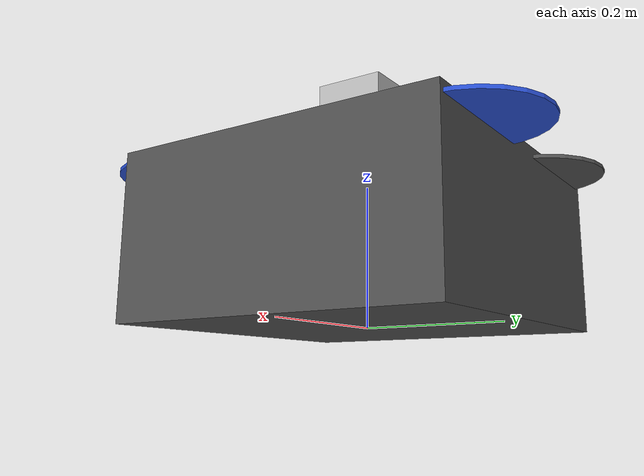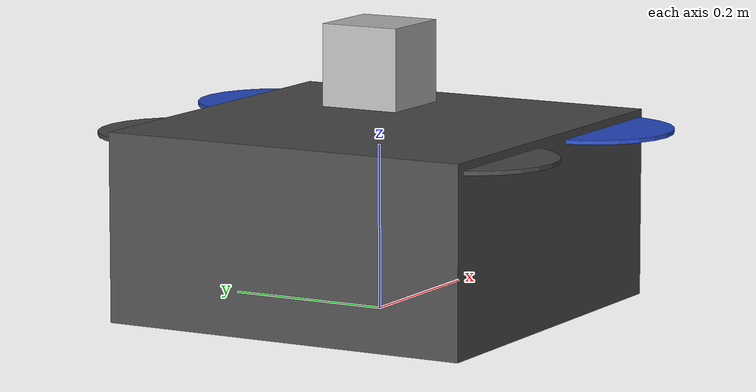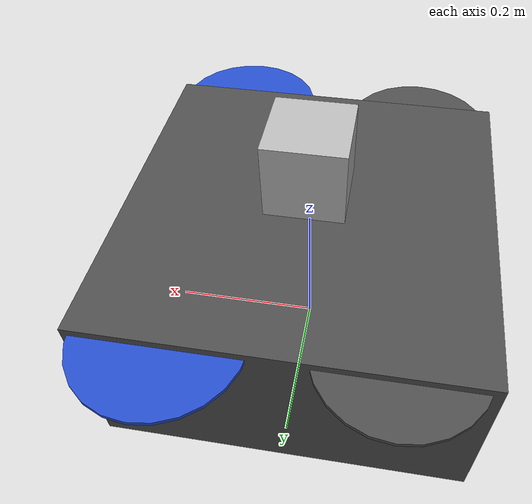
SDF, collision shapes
<?xml version="1.0"?>
<sdf version="1.6">
  <model name="drone1">
    <include>
      <uri>model://iris_with_standoffs</uri>
    </include>
        <!-- plugins -->
    <plugin name="rotor_0_blade_1" filename="libLiftDragPlugin.so">
      <a0>0.3</a0>
      <alpha_stall>1.4</alpha_stall>
      <cla>4.2500</cla>
      <cda>0.10</cda>
      <cma>0.00</cma>
      <cla_stall>-0.025</cla_stall>
      <cda_stall>0.0</cda_stall>
      <cma_stall>0.0</cma_stall>
      <area>0.002</area>
      <air_density>1.2041</air_density>
      <cp>0.084 0 0</cp>
      <forward>0 1 0</forward>
      <upward>0 0 1</upward>
      <link_name>iris::rotor_0</link_name>
    </plugin>
    <plugin name="rotor_0_blade_2" filename="libLiftDragPlugin.so">
      <a0>0.3</a0>
      <alpha_stall>1.4</alpha_stall>
      <cla>4.2500</cla>
      <cda>0.10</cda>
      <cma>0.00</cma>
      <cla_stall>-0.025</cla_stall>
      <cda_stall>0.0</cda_stall>
      <cma_stall>0.0</cma_stall>
      <area>0.002</area>
      <air_density>1.2041</air_density>
      <cp>-0.084 0 0</cp>
      <forward>0 -1 0</forward>
      <upward>0 0 1</upward>
      <link_name>iris::rotor_0</link_name>
    </plugin>

    <plugin name="rotor_1_blade_1" filename="libLiftDragPlugin.so">
      <a0>0.3</a0>
      <alpha_stall>1.4</alpha_stall>
      <cla>4.2500</cla>
      <cda>0.10</cda>
      <cma>0.00</cma>
      <cla_stall>-0.025</cla_stall>
      <cda_stall>0.0</cda_stall>
      <cma_stall>0.0</cma_stall>
      <area>0.002</area>
      <air_density>1.2041</air_density>
      <cp>0.084 0 0</cp>
      <forward>0 1 0</forward>
      <upward>0 0 1</upward>
      <link_name>iris::rotor_1</link_name>
    </plugin>
    <plugin name="rotor_1_blade_2" filename="libLiftDragPlugin.so">
      <a0>0.3</a0>
      <alpha_stall>1.4</alpha_stall>
      <cla>4.2500</cla>
      <cda>0.10</cda>
      <cma>0.00</cma>
      <cla_stall>-0.025</cla_stall>
      <cda_stall>0.0</cda_stall>
      <cma_stall>0.0</cma_stall>
      <area>0.002</area>
      <air_density>1.2041</air_density>
      <cp>-0.084 0 0</cp>
      <forward>0 -1 0</forward>
      <upward>0 0 1</upward>
      <link_name>iris::rotor_1</link_name>
    </plugin>

    <plugin name="rotor_2_blade_1" filename="libLiftDragPlugin.so">
      <a0>0.3</a0>
      <alpha_stall>1.4</alpha_stall>
      <cla>4.2500</cla>
      <cda>0.10</cda>
      <cma>0.00</cma>
      <cla_stall>-0.025</cla_stall>
      <cda_stall>0.0</cda_stall>
      <cma_stall>0.0</cma_stall>
      <area>0.002</area>
      <air_density>1.2041</air_density>
      <cp>0.084 0 0</cp>
      <forward>0 -1 0</forward>
      <upward>0 0 1</upward>
      <link_name>iris::rotor_2</link_name>
    </plugin>
    <plugin name="rotor_2_blade_2" filename="libLiftDragPlugin.so">
      <a0>0.3</a0>
      <alpha_stall>1.4</alpha_stall>
      <cla>4.2500</cla>
      <cda>0.10</cda>
      <cma>0.00</cma>
      <cla_stall>-0.025</cla_stall>
      <cda_stall>0.0</cda_stall>
      <cma_stall>0.0</cma_stall>
      <area>0.002</area>
      <air_density>1.2041</air_density>
      <cp>-0.084 0 0</cp>
      <forward>0 1 0</forward>
      <upward>0 0 1</upward>
      <link_name>iris::rotor_2</link_name>
    </plugin>

    <plugin name="rotor_3_blade_1" filename="libLiftDragPlugin.so">
      <a0>0.3</a0>
      <alpha_stall>1.4</alpha_stall>
      <cla>4.2500</cla>
      <cda>0.10</cda>
      <cma>0.00</cma>
      <cla_stall>-0.025</cla_stall>
      <cda_stall>0.0</cda_stall>
      <cma_stall>0.0</cma_stall>
      <area>0.002</area>
      <air_density>1.2041</air_density>
      <cp>0.084 0 0</cp>
      <forward>0 -1 0</forward>
      <upward>0 0 1</upward>
      <link_name>iris::rotor_3</link_name>
    </plugin>
    <plugin name="rotor_3_blade_2" filename="libLiftDragPlugin.so">
      <a0>0.3</a0>
      <alpha_stall>1.4</alpha_stall>
      <cla>4.2500</cla>
      <cda>0.10</cda>
      <cma>0.00</cma>
      <cla_stall>-0.025</cla_stall>
      <cda_stall>0.0</cda_stall>
      <cma_stall>0.0</cma_stall>
      <area>0.002</area>
      <air_density>1.2041</air_density>
      <cp>-0.084 0 0</cp>
      <forward>0 1 0</forward>
      <upward>0 0 1</upward>
      <link_name>iris::rotor_3</link_name>
    </plugin>
        <plugin name="arducopter_plugin" filename="libArduPilotPlugin.so">
      <fdm_addr>127.0.0.1</fdm_addr>
      <fdm_port_in>9002</fdm_port_in>
      <fdm_port_out>9003</fdm_port_out>
      <!--
          Require by APM :
          Only change model and gazebo from XYZ to XY-Z coordinates
      -->
      <modelXYZToAirplaneXForwardZDown>0 0 0 3.141593 0 0</modelXYZToAirplaneXForwardZDown>
      <gazeboXYZToNED>0 0 0 3.141593 0 0</gazeboXYZToNED>
      <imuName>iris::iris/imu_link::imu_sensor</imuName>
      <connectionTimeoutMaxCount>5</connectionTimeoutMaxCount>
      <control channel="0">
      <!--
          incoming control command [0, 1]
          so offset it by 0 to get [0, 1]
          and divide max target by 1.
          offset = 0
          multiplier = 838 max rpm / 1 = 838
        -->reutrn
        <type>VELOCITY</type>
        <offset>0</offset>
        <p_gain>0.20</p_gain>
        <i_gain>0</i_gain>
        <d_gain>0</d_gain>
        <i_max>0</i_max>
        <i_min>0</i_min>
        <cmd_max>2.5</cmd_max>
        <cmd_min>-2.5</cmd_min>
        <jointName>iris::rotor_0_joint</jointName>
        <multiplier>838</multiplier>
        <controlVelocitySlowdownSim>1</controlVelocitySlowdownSim>
      </control>
      <control channel="1">
        <type>VELOCITY</type>
        <offset>0</offset>
        <p_gain>0.20</p_gain>
        <i_gain>0</i_gain>
        <d_gain>0</d_gain>
        <i_max>0</i_max>
        <i_min>0</i_min>
        <cmd_max>2.5</cmd_max>
        <cmd_min>-2.5</cmd_min>
        <jointName>iris::rotor_1_joint</jointName>
        <multiplier>838</multiplier>
        <controlVelocitySlowdownSim>1</controlVelocitySlowdownSim>
      </control>
      <control channel="2">
        <type>VELOCITY</type>
        <offset>0</offset>
        <p_gain>0.20</p_gain>
        <i_gain>0</i_gain>
        <d_gain>0</d_gain>
        <i_max>0</i_max>
        <i_min>0</i_min>
        <cmd_max>2.5</cmd_max>
        <cmd_min>-2.5</cmd_min>
        <jointName>iris::rotor_2_joint</jointName>
        <multiplier>-838</multiplier>
        <controlVelocitySlowdownSim>1</controlVelocitySlowdownSim>
      </control>
      <control channel="3">
        <type>VELOCITY</type>
        <offset>0</offset>
        <p_gain>0.20</p_gain>
        <i_gain>0</i_gain>
        <d_gain>0</d_gain>
        <i_max>0</i_max>
        <i_min>0</i_min>
        <cmd_max>2.5</cmd_max>
        <cmd_min>-2.5</cmd_min>
        <jointName>iris::rotor_3_joint</jointName>
        <multiplier>-838</multiplier>
        <controlVelocitySlowdownSim>1</controlVelocitySlowdownSim>
      </control>
    </plugin>

<!--add lidar-->
    <link name="hokuyo_link">
      <pose>0 0 0 0 0 0</pose>
      <collision name="collision">
        <pose>0 0 0.3 0 0 0</pose>
        <geometry>
          <box>
            <size>0.1 0.1 0.1</size>
          </box>
        </geometry>
      </collision>
      <visual name="visual">
        <pose>0 0 0.27 0 0 0</pose>
        <geometry>
          <mesh>
            <uri>model://hokuyo/meshes/hokuyo.dae</uri>
          </mesh>
        </geometry>
      </visual>
      <inertial>
        <mass>0.016</mass>
        <inertia>
            <ixx>0.0001</ixx>
            <ixy>0</ixy>
            <ixz>0</ixz>
            <iyy>0.0001</iyy>
            <iyz>0</iyz>
            <izz>0.0001</izz>
            <!-- low intertia necessary to avoid not disturb the drone -->
        </inertia>
      </inertial>

      <sensor type="ray" name="laser">
        <pose>0 0 0.3 0 0 1.57</pose>
        <visualize>true</visualize>
        <update_rate>10</update_rate>
        <ray>
          <scan>
            <horizontal>
              <samples>1024</samples>
              <resolution>1</resolution>
              <min_angle>-3.141593</min_angle>
              <max_angle>3.141593</max_angle>
            </horizontal>
          </scan>
          <range>
            <min>0.1</min>
            <max>30</max>
            <resolution>0.1</resolution>
          </range>
        </ray>
        <plugin name="robo_scan" filename="libgazebo_ros_ray_sensor.so">
          <output_type>sensor_msgs/LaserScan</output_type>
          <frame_name>base_scan</frame_name>
       </plugin>
      </sensor>
    </link>

    <joint name="hokuyo_joint" type="fixed">
      <pose>0 0 0 0 0 0</pose>
      <parent>iris::base_link</parent>
      <child>hokuyo_link</child>
    </joint>  </model>
</sdf>

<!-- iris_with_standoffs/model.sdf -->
<sdf version='1.6'>
  <model name='iris'>
    <pose>0 0 0.194923 0 0 0</pose>
    <link name='base_link'>
      <velocity_decay>
        <linear>0.0</linear>
        <angular>0.0</angular>
      </velocity_decay>
      <inertial>
        <pose>0 0 0 0 0 0</pose>
        <mass>1.5</mass>
        <inertia>
          <ixx>0.008</ixx>
          <ixy>0</ixy>
          <ixz>0</ixz>
          <iyy>0.015</iyy>
          <iyz>0</iyz>
          <izz>0.017</izz>
        </inertia>
      </inertial>
      <collision name='base_link_collision'>
        <pose>0 0 -0.08 0 0 0</pose>
        <geometry>
          <box>
            <size>0.47 0.47 0.23</size>
          </box>
        </geometry>
        <surface>
          <contact>
            <ode>
              <max_vel>100.0</max_vel>
              <min_depth>0.001</min_depth>
            </ode>
          </contact>
          <friction>
            <ode>
              <mu>1.0</mu>
              <mu2>1.0</mu2>
            </ode>
          </friction>
        </surface>
      </collision>
      <visual name='base_link_visual'>
        <geometry>
          <mesh>
            <uri>model://../model_source/models/iris_with_standoffs/meshes/iris.dae</uri>
          </mesh>
        </geometry>
        <material>
          <script>
            <name>Gazebo/DarkGrey</name>
          </script>
        </material>
      </visual>

      <visual name='front_left_leg_visual'>
        <pose>0.123 0.22 -0.11 0 0 0</pose>
        <geometry>
          <cylinder>
            <radius>0.005</radius>
            <length>0.17</length>
          </cylinder>
        </geometry>
        <material>
          <script>
            <name>Gazebo/FlatBlack</name>
            <uri>file://media/materials/scripts/gazebo.material</uri>
          </script>
        </material>
      </visual>
      <visual name='front_right_leg_visual'>
        <pose>0.123 -0.22 -0.11 0 0 0</pose>
        <geometry>
          <cylinder>
            <radius>0.005</radius>
            <length>0.17</length>
          </cylinder>
        </geometry>
        <material>
          <script>
            <name>Gazebo/FlatBlack</name>
            <uri>file://media/materials/scripts/gazebo.material</uri>
          </script>
        </material>
      </visual>
      <visual name='rear_left_leg_visual'>
        <pose>-0.140 0.21 -0.11 0 0 0</pose>
        <geometry>
          <cylinder>
            <radius>0.005</radius>
            <length>0.17</length>
          </cylinder>
        </geometry>
        <material>
          <script>
            <name>Gazebo/FlatBlack</name>
            <uri>file://media/materials/scripts/gazebo.material</uri>
          </script>
        </material>
      </visual>
      <visual name='rear_right_leg_visual'>
        <pose>-0.140 -0.21 -0.11 0 0 0</pose>
        <geometry>
          <cylinder>
            <radius>0.005</radius>
            <length>0.17</length>
          </cylinder>
        </geometry>
        <material>
          <script>
            <name>Gazebo/FlatBlack</name>
            <uri>file://media/materials/scripts/gazebo.material</uri>
          </script>
        </material>
      </visual>
    </link>
    <link name='iris/ground_truth/odometry_sensorgt_link'>
      <pose>0 0 0 0 -0 0</pose>
      <inertial>
        <pose>0 0 0 0 -0 0</pose>
        <mass>0.15</mass>
        <inertia>
          <ixx>0.0001</ixx>
          <ixy>0</ixy>
          <ixz>0</ixz>
          <iyy>0.0002</iyy>
          <iyz>0</iyz>
          <izz>0.0002</izz>
        </inertia>
      </inertial>
    </link>
    <joint name='iris/ground_truth/odometry_sensorgt_joint' type='revolute'>
      <child>iris/ground_truth/odometry_sensorgt_link</child>
      <parent>base_link</parent>
      <axis>
        <xyz>0 0 1</xyz>
        <limit>
          <lower>0</lower>
          <upper>0</upper>
          <effort>0</effort>
          <velocity>0</velocity>
        </limit>
        <dynamics>
          <damping>1.0</damping>
        </dynamics>
        <use_parent_model_frame>1</use_parent_model_frame>
      </axis>
      <physics>
        <ode>
          <implicit_spring_damper>1</implicit_spring_damper>
        </ode>
      </physics>
    </joint>
    <link name='iris/imu_link'>
      <inertial>
        <pose>0 0 0 0 0 0</pose>
        <mass>0.15</mass>
        <inertia>
          <ixx>0.00001</ixx>
          <ixy>0</ixy>
          <ixz>0</ixz>
          <iyy>0.00002</iyy>
          <iyz>0</iyz>
          <izz>0.00002</izz>
        </inertia>
      </inertial>
      <sensor name="imu_sensor" type="imu">
        <pose>0 0 0 3.141593 0 0</pose>
        <always_on>1</always_on>
        <update_rate>1000.0</update_rate>
      </sensor>
    </link>
    <joint name='iris/imu_joint' type='revolute'>
      <child>iris/imu_link</child>
      <parent>base_link</parent>
      <axis>
        <xyz>0 0 1</xyz>
        <limit>
          <lower>0</lower>
          <upper>0</upper>
          <effort>0</effort>
          <velocity>0</velocity>
        </limit>
        <dynamics>
          <damping>1.0</damping>
        </dynamics>
        <use_parent_model_frame>1</use_parent_model_frame>
      </axis>
      <physics>
        <ode>
          <implicit_spring_damper>1</implicit_spring_damper>
        </ode>
      </physics>
    </joint>
    <link name='rotor_0'>
      <pose>0.13 -0.22 0.023 0 -0 0</pose>
      <inertial>
        <pose>0 0 0 0 -0 0</pose>
        <mass>0.025</mass>
        <inertia>
          <ixx>9.75e-06</ixx>
          <ixy>0</ixy>
          <ixz>0</ixz>
          <iyy>0.000166704</iyy>
          <iyz>0</iyz>
          <izz>0.000167604</izz>
        </inertia>
      </inertial>
      <collision name='rotor_0_collision'>
        <pose>0 0 0 0 -0 0</pose>
        <geometry>
          <cylinder>
            <length>0.005</length>
            <radius>0.1</radius>
          </cylinder>
        </geometry>
        <surface>
          <contact>
            <ode/>
          </contact>
          <friction>
            <ode/>
          </friction>
        </surface>
      </collision>
      <visual name='rotor_0_visual'>
        <pose>0 0 0 0 -0 0</pose>
        <geometry>
          <mesh>
            <scale>1 1 1</scale>
            <uri>model://../model_source/models/iris_with_standoffs/meshes/iris_prop_ccw.dae</uri>
          </mesh>
        </geometry>
        <material>
          <script>
            <name>Gazebo/Blue</name>
            <uri>__default__</uri>
          </script>
        </material>
      </visual>
      <gravity>1</gravity>
      <velocity_decay/>
      <self_collide>0</self_collide>
    </link>
    <joint name='rotor_0_joint' type='revolute'>
      <child>rotor_0</child>
      <parent>base_link</parent>
      <axis>
        <xyz>0 0 1</xyz>
        <limit>
          <lower>-1e+16</lower>
          <upper>1e+16</upper>
        </limit>
        <dynamics>
          <damping>0.004</damping>
        </dynamics>
        <use_parent_model_frame>1</use_parent_model_frame>
      </axis>
      <physics>
        <ode>
          <implicit_spring_damper>1</implicit_spring_damper>
        </ode>
      </physics>
    </joint>
    <link name='rotor_1'>
      <pose>-0.13 0.2 0.023 0 -0 0</pose>
      <inertial>
        <pose>0 0 0 0 -0 0</pose>
        <mass>0.025</mass>
        <inertia>
          <ixx>9.75e-06</ixx>
          <ixy>0</ixy>
          <ixz>0</ixz>
          <iyy>0.000166704</iyy>
          <iyz>0</iyz>
          <izz>0.000167604</izz>
        </inertia>
      </inertial>
      <collision name='rotor_1_collision'>
        <pose>0 0 0 0 -0 0</pose>
        <geometry>
          <cylinder>
            <length>0.005</length>
            <radius>0.1</radius>
          </cylinder>
        </geometry>
        <surface>
          <contact>
            <ode/>
          </contact>
          <friction>
            <ode/>
          </friction>
        </surface>
      </collision>
      <visual name='rotor_1_visual'>
        <pose>0 0 0 0 -0 0</pose>
        <geometry>
          <mesh>
            <scale>1 1 1</scale>
            <uri>model://../model_source/models/iris_with_standoffs/meshes/iris_prop_ccw.dae</uri>
          </mesh>
        </geometry>
        <material>
          <script>
            <name>Gazebo/DarkGrey</name>
            <uri>__default__</uri>
          </script>
        </material>
      </visual>
      <gravity>1</gravity>
      <velocity_decay/>
      <self_collide>0</self_collide>
    </link>
    <joint name='rotor_1_joint' type='revolute'>
      <child>rotor_1</child>
      <parent>base_link</parent>
      <axis>
        <xyz>0 0 1</xyz>
        <limit>
          <lower>-1e+16</lower>
          <upper>1e+16</upper>
        </limit>
        <dynamics>
          <damping>0.004</damping>
        </dynamics>
        <use_parent_model_frame>1</use_parent_model_frame>
      </axis>
      <physics>
        <ode>
          <implicit_spring_damper>1</implicit_spring_damper>
        </ode>
      </physics>
    </joint>
    <link name='rotor_2'>
      <pose>0.13 0.22 0.023 0 -0 0</pose>
      <inertial>
        <pose>0 0 0 0 -0 0</pose>
        <mass>0.025</mass>
        <inertia>
          <ixx>9.75e-06</ixx>
          <ixy>0</ixy>
          <ixz>0</ixz>
          <iyy>0.000166704</iyy>
          <iyz>0</iyz>
          <izz>0.000167604</izz>
        </inertia>
      </inertial>
      <collision name='rotor_2_collision'>
        <pose>0 0 0 0 -0 0</pose>
        <geometry>
          <cylinder>
            <length>0.005</length>
            <radius>0.1</radius>
          </cylinder>
        </geometry>
        <surface>
          <contact>
            <ode/>
          </contact>
          <friction>
            <ode/>
          </friction>
        </surface>
      </collision>
      <visual name='rotor_2_visual'>
        <pose>0 0 0 0 -0 0</pose>
        <geometry>
          <mesh>
            <scale>1 1 1</scale>
            <uri>model://../model_source/models/iris_with_standoffs/meshes/iris_prop_cw.dae</uri>
          </mesh>
        </geometry>
        <material>
          <script>
            <name>Gazebo/Blue</name>
            <uri>__default__</uri>
          </script>
        </material>
      </visual>
      <gravity>1</gravity>
      <velocity_decay/>
      <self_collide>0</self_collide>
    </link>
    <joint name='rotor_2_joint' type='revolute'>
      <child>rotor_2</child>
      <parent>base_link</parent>
      <axis>
        <xyz>0 0 1</xyz>
        <limit>
          <lower>-1e+16</lower>
          <upper>1e+16</upper>
        </limit>
        <dynamics>
          <damping>0.004</damping>
        </dynamics>
        <use_parent_model_frame>1</use_parent_model_frame>
      </axis>
      <physics>
        <ode>
          <implicit_spring_damper>1</implicit_spring_damper>
        </ode>
      </physics>
    </joint>
    <link name='rotor_3'>
      <pose>-0.13 -0.2 0.023 0 -0 0</pose>
      <inertial>
        <pose>0 0 0 0 -0 0</pose>
        <mass>0.025</mass>
        <inertia>
          <ixx>9.75e-06</ixx>
          <ixy>0</ixy>
          <ixz>0</ixz>
          <iyy>0.000166704</iyy>
          <iyz>0</iyz>
          <izz>0.000167604</izz>
        </inertia>
      </inertial>
      <collision name='rotor_3_collision'>
        <pose>0 0 0 0 -0 0</pose>
        <geometry>
          <cylinder>
            <length>0.005</length>
            <radius>0.1</radius>
          </cylinder>
        </geometry>
        <surface>
          <contact>
            <ode/>
          </contact>
          <friction>
            <ode/>
          </friction>
        </surface>
      </collision>
      <visual name='rotor_3_visual'>
        <pose>0 0 0 0 -0 0</pose>
        <geometry>
          <mesh>
            <scale>1 1 1</scale>
            <uri>model://../model_source/models/iris_with_standoffs/meshes/iris_prop_cw.dae</uri>
          </mesh>
        </geometry>
        <material>
          <script>
            <name>Gazebo/DarkGrey</name>
            <uri>__default__</uri>
          </script>
        </material>
      </visual>
      <gravity>1</gravity>
      <velocity_decay/>
      <self_collide>0</self_collide>
    </link>
    <joint name='rotor_3_joint' type='revolute'>
      <child>rotor_3</child>
      <parent>base_link</parent>
      <axis>
        <xyz>0 0 1</xyz>
        <limit>
          <lower>-1e+16</lower>
          <upper>1e+16</upper>
        </limit>
        <dynamics>
          <damping>0.004</damping>
        </dynamics>
        <use_parent_model_frame>1</use_parent_model_frame>
      </axis>
      <physics>
        <ode>
          <implicit_spring_damper>1</implicit_spring_damper>
        </ode>
      </physics>
    </joint>
    <static>0</static>
  </model>
</sdf>
